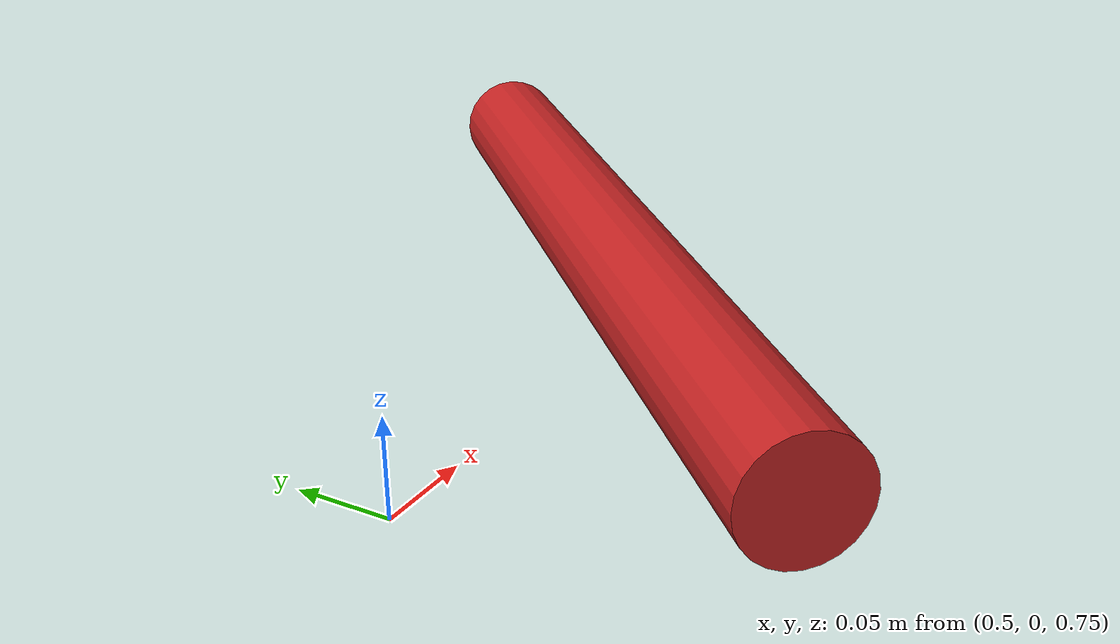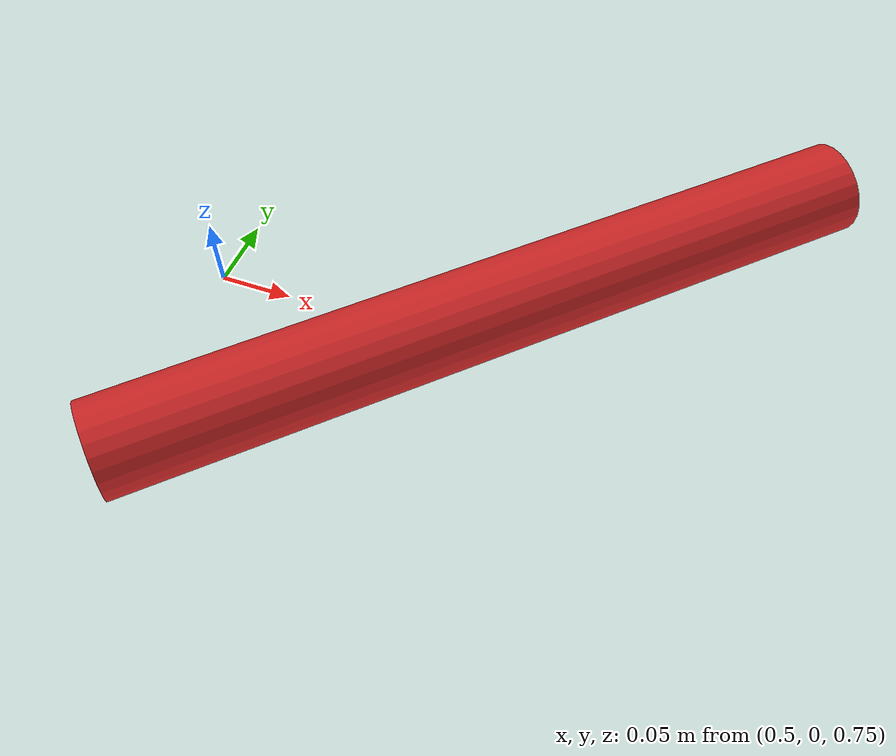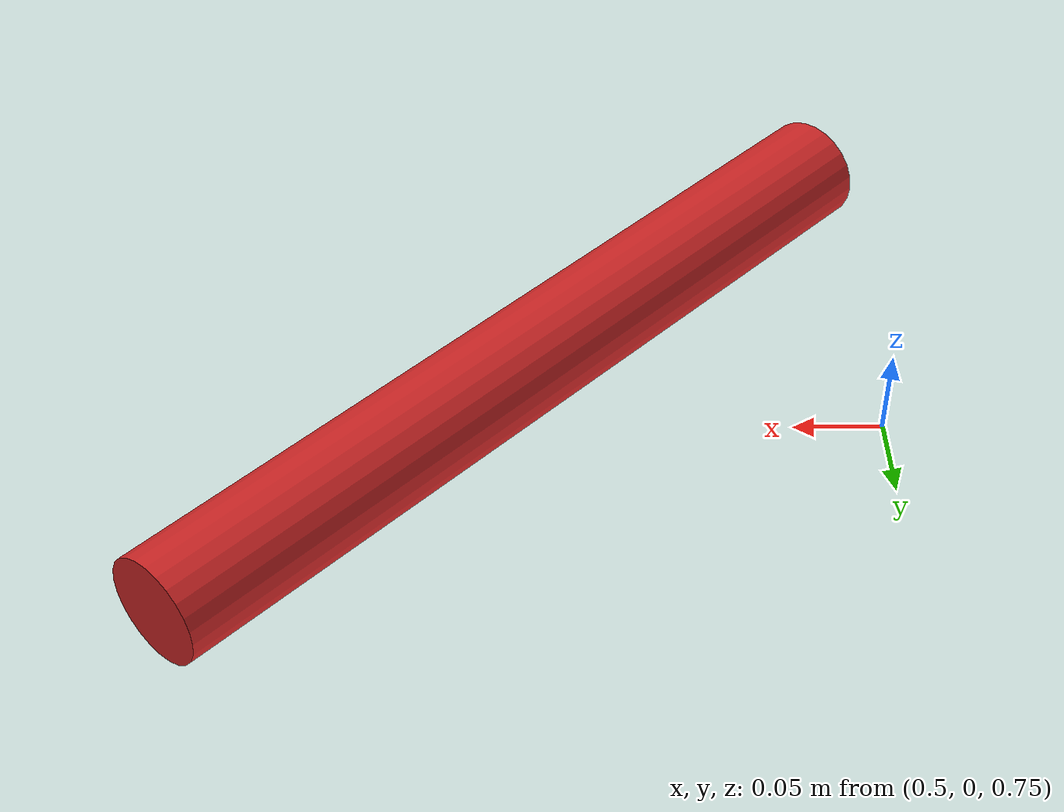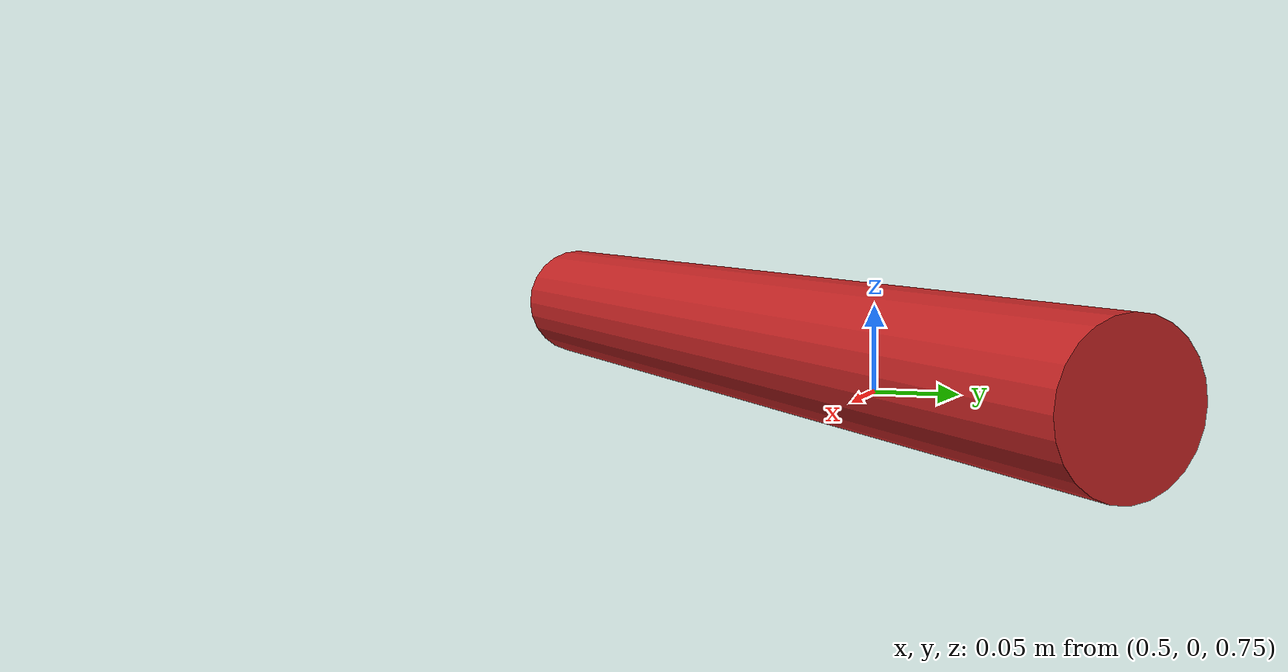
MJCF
<mujoco model="cube">
    <option  gravity="0 0 -9.8" >
        <flag  warmstart="enable"></flag>
    </option>
    <asset>
        <texture name="texture_block" file="./textures/block_red.png" gridsize="3 4" gridlayout=".U..LFRB.D.."></texture>
        <material name="block_mat" texture="texture_block" specular="0" shininess="0.5" reflectance="0"></material>
    </asset>

  <!--quat=""-->
    <worldbody>
        <body name="object0" pos="0.70 0.0 0.8" quat="0.65328148 -0.27059805  0.65328148  0.27059805">
            <joint name="object0:joint" type="free" damping="0.1" limited="false"></joint>
            <geom size="0.03 0.25" type="cylinder" condim="4" solimp="0.95 0.95 0.01" name="object0" material="block_mat" mass="0.01" friction="0.95 0.3 0.8" ></geom>
        </body>
    </worldbody>
</mujoco>
